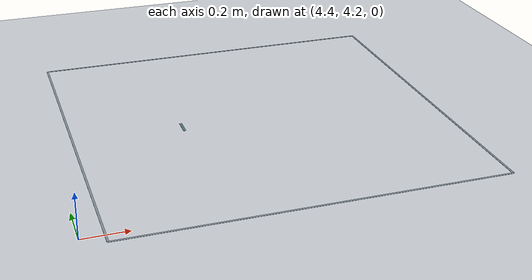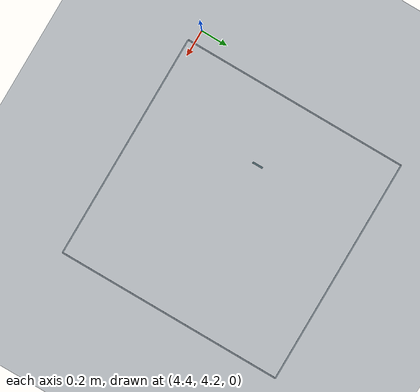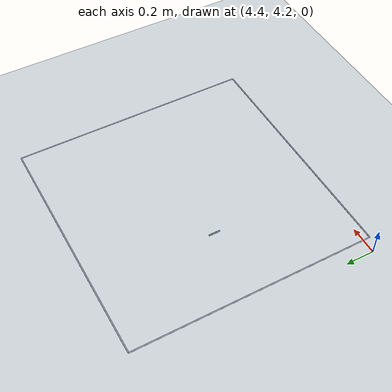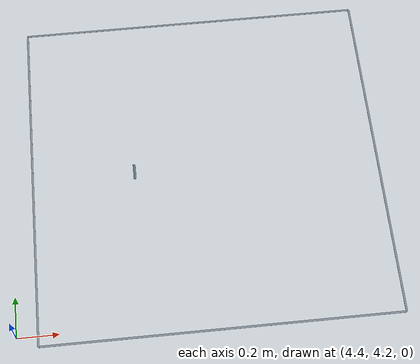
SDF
<?xml version="1.0"?>
<!-- The reference physics plane and systems are unchanged; bay marks are visual only. -->
<sdf version="1.6">
  <world name="empty">
    <physics name="1ms" type="ignored"><max_step_size>0.001</max_step_size><real_time_factor>1.0</real_time_factor></physics>
    <plugin filename="gz-sim-physics-system" name="gz::sim::systems::Physics"/>
    <plugin filename="gz-sim-user-commands-system" name="gz::sim::systems::UserCommands"/>
    <plugin filename="gz-sim-scene-broadcaster-system" name="gz::sim::systems::SceneBroadcaster"/>
    <plugin filename="gz-sim-contact-system" name="gz::sim::systems::Contact"/>
    <scene><ambient>0.35 0.36 0.38 1</ambient><background>0.85 0.86 0.88 1</background><shadows>true</shadows></scene>
    <light type="directional" name="studio_key">
      <cast_shadows>true</cast_shadows><pose>0 0 10 0 0 0</pose>
      <diffuse>0.86 0.88 0.90 1</diffuse><specular>0.25 0.25 0.25 1</specular>
      <attenuation><range>1000</range><constant>0.9</constant><linear>0.01</linear><quadratic>0.001</quadratic></attenuation>
      <direction>-0.5 0.3 -0.9</direction>
    </light>
    <light type="directional" name="studio_fill">
      <cast_shadows>false</cast_shadows><pose>0 0 8 0 0 0</pose>
      <diffuse>0.24 0.28 0.33 1</diffuse><specular>0.1 0.1 0.1 1</specular><direction>0.6 -0.4 -0.7</direction>
    </light>
    <model name="ground_plane"><static>true</static><link name="link">
      <collision name="collision"><geometry><plane><normal>0 0 1</normal><size>100 100</size></plane></geometry></collision>
      <visual name="visual"><geometry><plane><normal>0 0 1</normal><size>100 100</size></plane></geometry>
        <material><ambient>0.80 0.82 0.84 1</ambient><diffuse>0.80 0.82 0.84 1</diffuse><specular>0.06 0.06 0.06 1</specular></material>
      </visual>
    </link></model>
    <model name="calibration_bay"><static>true</static><pose>5.35 5 0.002 0 0 0</pose><link name="marks">
      <visual name="back"><pose>0 0.85 0 0 0 0</pose><geometry><box><size>1.7 0.009 0.001</size></box></geometry><material><ambient>0.52 0.57 0.61 1</ambient><diffuse>0.52 0.57 0.61 1</diffuse></material></visual>
      <visual name="front"><pose>0 -0.85 0 0 0 0</pose><geometry><box><size>1.7 0.009 0.001</size></box></geometry><material><ambient>0.52 0.57 0.61 1</ambient><diffuse>0.52 0.57 0.61 1</diffuse></material></visual>
      <visual name="left"><pose>-0.85 0 0 0 0 0</pose><geometry><box><size>0.009 1.7 0.001</size></box></geometry><material><ambient>0.52 0.57 0.61 1</ambient><diffuse>0.52 0.57 0.61 1</diffuse></material></visual>
      <visual name="right"><pose>0.85 0 0 0 0 0</pose><geometry><box><size>0.009 1.7 0.001</size></box></geometry><material><ambient>0.52 0.57 0.61 1</ambient><diffuse>0.52 0.57 0.61 1</diffuse></material></visual>
      <visual name="center_tick"><pose>-0.35 0 0.001 0 0 0</pose><geometry><box><size>0.012 0.08 0.001</size></box></geometry><material><ambient>0.34 0.45 0.49 1</ambient><diffuse>0.34 0.45 0.49 1</diffuse></material></visual>
    </link></model>
  </world>
</sdf>
